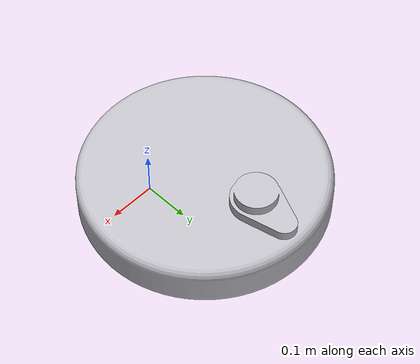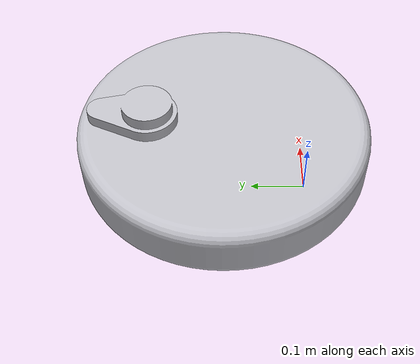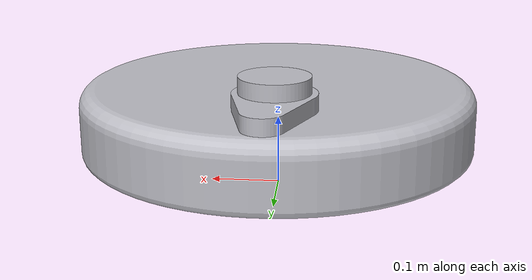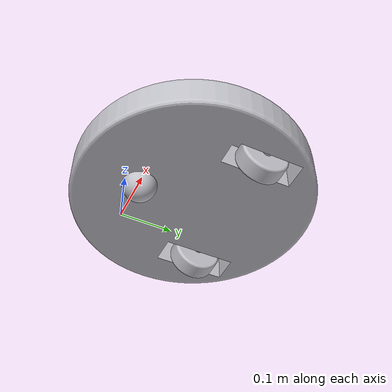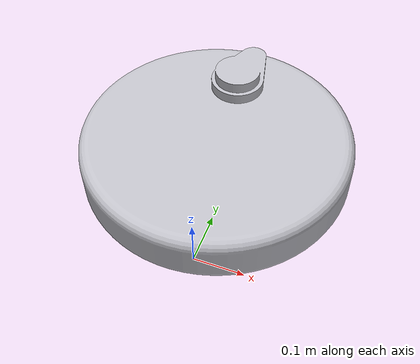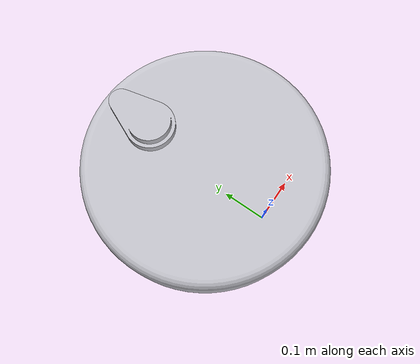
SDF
<sdf version='1.7'>
  <model name='BadBot'>
    <link name='base_link'>
      <inertial>
        <pose>-0.010539 0.150003 0.152056 0 -0 0</pose>
        <mass>29.6869</mass>
        <inertia>
          <ixx>0.0123822</ixx>
          <ixy>0.000223118</ixy>
          <ixz>0.000103646</ixz>
          <iyy>0.0129477</iyy>
          <iyz>-0.00190386</iyz>
          <izz>0.0220306</izz>
        </inertia>
      </inertial>
      <collision name='base_link_collision'>
        <pose>0 0 0 0 -0 0</pose>
        <geometry>
          <mesh>
            <scale>0.001 0.001 0.001</scale>
            <uri>file:///home/mayank/BadBot/BadBot_ros2_ws/install/BadBot_description/share/BadBot_description/meshes/base_link.stl</uri>
          </mesh>
        </geometry>
        <surface>
          <contact>
            <ode/>
          </contact>
          <friction>
            <ode>
              <mu>0.2</mu>
              <mu2>0.2</mu2>
            </ode>
          </friction>
        </surface>
      </collision>
      <collision name='base_link_fixed_joint_lump__left_shaft_1_collision_1'>
        <pose>0 0 0 0 -0 0</pose>
        <geometry>
          <mesh>
            <scale>0.001 0.001 0.001</scale>
            <uri>file:///home/mayank/BadBot/BadBot_ros2_ws/install/BadBot_description/share/BadBot_description/meshes/left_shaft_1.stl</uri>
          </mesh>
        </geometry>
        <surface>
          <contact>
            <ode/>
          </contact>
          <friction>
            <ode>
              <mu>0.2</mu>
              <mu2>0.2</mu2>
            </ode>
          </friction>
        </surface>
      </collision>
      <collision name='base_link_fixed_joint_lump__lidar_1_collision_2'>
        <pose>0 0 0 0 -0 0</pose>
        <geometry>
          <mesh>
            <scale>0.001 0.001 0.001</scale>
            <uri>file:///home/mayank/BadBot/BadBot_ros2_ws/install/BadBot_description/share/BadBot_description/meshes/lidar_1.stl</uri>
          </mesh>
        </geometry>
        <surface>
          <contact>
            <ode/>
          </contact>
          <friction>
            <ode>
              <mu>0.2</mu>
              <mu2>0.2</mu2>
            </ode>
          </friction>
        </surface>
      </collision>
      <collision name='base_link_fixed_joint_lump__right_shaft_1_collision_3'>
        <pose>0 0 0 0 -0 0</pose>
        <geometry>
          <mesh>
            <scale>0.001 0.001 0.001</scale>
            <uri>file:///home/mayank/BadBot/BadBot_ros2_ws/install/BadBot_description/share/BadBot_description/meshes/right_shaft_1.stl</uri>
          </mesh>
        </geometry>
        <surface>
          <contact>
            <ode/>
          </contact>
          <friction>
            <ode>
              <mu>0.2</mu>
              <mu2>0.2</mu2>
            </ode>
          </friction>
        </surface>
      </collision>
      <visual name='base_link_visual'>
        <pose>0 0 0 0 -0 0</pose>
        <geometry>
          <mesh>
            <scale>0.001 0.001 0.001</scale>
            <uri>file:///home/mayank/BadBot/BadBot_ros2_ws/install/BadBot_description/share/BadBot_description/meshes/base_link.stl</uri>
          </mesh>
        </geometry>
        <material>
          <script>
            <name>Gazebo/Silver</name>
            <uri>file://media/materials/scripts/gazebo.material</uri>
          </script>
        </material>
      </visual>
      <visual name='base_link_fixed_joint_lump__left_shaft_1_visual_1'>
        <pose>0 0 0 0 -0 0</pose>
        <geometry>
          <mesh>
            <scale>0.001 0.001 0.001</scale>
            <uri>file:///home/mayank/BadBot/BadBot_ros2_ws/install/BadBot_description/share/BadBot_description/meshes/left_shaft_1.stl</uri>
          </mesh>
        </geometry>
        <material>
          <script>
            <name>Gazebo/Silver</name>
            <uri>file://media/materials/scripts/gazebo.material</uri>
          </script>
        </material>
      </visual>
      <visual name='base_link_fixed_joint_lump__lidar_1_visual_2'>
        <pose>0 0 0 0 -0 0</pose>
        <geometry>
          <mesh>
            <scale>0.001 0.001 0.001</scale>
            <uri>file:///home/mayank/BadBot/BadBot_ros2_ws/install/BadBot_description/share/BadBot_description/meshes/lidar_1.stl</uri>
          </mesh>
        </geometry>
        <material>
          <script>
            <name>Gazebo/Silver</name>
            <uri>file://media/materials/scripts/gazebo.material</uri>
          </script>
        </material>
      </visual>
      <visual name='base_link_fixed_joint_lump__right_shaft_1_visual_3'>
        <pose>0 0 0 0 -0 0</pose>
        <geometry>
          <mesh>
            <scale>0.001 0.001 0.001</scale>
            <uri>file:///home/mayank/BadBot/BadBot_ros2_ws/install/BadBot_description/share/BadBot_description/meshes/right_shaft_1.stl</uri>
          </mesh>
        </geometry>
        <material>
          <script>
            <name>Gazebo/Silver</name>
            <uri>file://media/materials/scripts/gazebo.material</uri>
          </script>
        </material>
      </visual>
      <self_collide>1</self_collide>
      <gravity>1</gravity>
      <self_collide>1</self_collide>
      <self_collide>1</self_collide>
      <self_collide>1</self_collide>
    </link>
    <joint name='Rev7' type='revolute'>
      <pose relative_to='base_link'>-0.010481 0.035074 0.108665 0 -0 0</pose>
      <parent>base_link</parent>
      <child>caster_wheel_1</child>
      <axis>
        <xyz>0 0 -1</xyz>
        <limit>
          <lower>-1e+16</lower>
          <upper>1e+16</upper>
        </limit>
        <dynamics>
          <spring_reference>0</spring_reference>
          <spring_stiffness>0</spring_stiffness>
        </dynamics>
      </axis>
    </joint>
    <link name='caster_wheel_1'>
      <pose relative_to='Rev7'>0 0 0 0 -0 0</pose>
      <inertial>
        <pose>0 -0 -0 0 -0 0</pose>
        <mass>1.40084</mass>
        <inertia>
          <ixx>0.000686</ixx>
          <ixy>0</ixy>
          <ixz>0</ixz>
          <iyy>0.000686</iyy>
          <iyz>0</iyz>
          <izz>0.000686</izz>
        </inertia>
      </inertial>
      <collision name='caster_wheel_1_collision'>
        <pose>0.010481 -0.035074 -0.108665 0 -0 0</pose>
        <geometry>
          <mesh>
            <scale>0.001 0.001 0.001</scale>
            <uri>file:///home/mayank/BadBot/BadBot_ros2_ws/install/BadBot_description/share/BadBot_description/meshes/caster_wheel_1.stl</uri>
          </mesh>
        </geometry>
        <surface>
          <contact>
            <ode/>
          </contact>
          <friction>
            <ode>
              <mu>0.2</mu>
              <mu2>0.2</mu2>
            </ode>
          </friction>
        </surface>
      </collision>
      <visual name='caster_wheel_1_visual'>
        <pose>0.010481 -0.035074 -0.108665 0 -0 0</pose>
        <geometry>
          <mesh>
            <scale>0.001 0.001 0.001</scale>
            <uri>file:///home/mayank/BadBot/BadBot_ros2_ws/install/BadBot_description/share/BadBot_description/meshes/caster_wheel_1.stl</uri>
          </mesh>
        </geometry>
        <material>
          <script>
            <name>Gazebo/Silver</name>
            <uri>file://media/materials/scripts/gazebo.material</uri>
          </script>
        </material>
      </visual>
      <self_collide>1</self_collide>
    </link>
    <joint name='Rev10' type='revolute'>
      <pose relative_to='base_link'>-0.160481 0.226663 0.123665 0 -0 0</pose>
      <parent>base_link</parent>
      <child>left_wheel_1</child>
      <axis>
        <xyz>-1 0 0</xyz>
        <limit>
          <lower>-1e+16</lower>
          <upper>1e+16</upper>
        </limit>
        <dynamics>
          <spring_reference>0</spring_reference>
          <spring_stiffness>0</spring_stiffness>
        </dynamics>
      </axis>
    </joint>
    <link name='left_wheel_1'>
      <pose relative_to='Rev10'>0 0 0 0 -0 0</pose>
      <inertial>
        <pose>0 -0 -0 0 -0 0</pose>
        <mass>0.3854</mass>
        <inertia>
          <ixx>0.000496</ixx>
          <ixy>0</ixy>
          <ixz>0</ixz>
          <iyy>0.000299</iyy>
          <iyz>0</iyz>
          <izz>0.000299</izz>
        </inertia>
      </inertial>
      <collision name='left_wheel_1_collision'>
        <pose>0.160481 -0.226663 -0.123665 0 -0 0</pose>
        <geometry>
          <mesh>
            <scale>0.001 0.001 0.001</scale>
            <uri>file:///home/mayank/BadBot/BadBot_ros2_ws/install/BadBot_description/share/BadBot_description/meshes/left_wheel_1.stl</uri>
          </mesh>
        </geometry>
        <surface>
          <contact>
            <ode/>
          </contact>
          <friction>
            <ode>
              <mu>0.2</mu>
              <mu2>0.2</mu2>
            </ode>
          </friction>
        </surface>
      </collision>
      <visual name='left_wheel_1_visual'>
        <pose>0.160481 -0.226663 -0.123665 0 -0 0</pose>
        <geometry>
          <mesh>
            <scale>0.001 0.001 0.001</scale>
            <uri>file:///home/mayank/BadBot/BadBot_ros2_ws/install/BadBot_description/share/BadBot_description/meshes/left_wheel_1.stl</uri>
          </mesh>
        </geometry>
        <material>
          <script>
            <name>Gazebo/Silver</name>
            <uri>file://media/materials/scripts/gazebo.material</uri>
          </script>
        </material>
      </visual>
      <self_collide>1</self_collide>
    </link>
    <joint name='Rev8' type='revolute'>
      <pose relative_to='base_link'>0.139519 0.226663 0.123665 0 -0 0</pose>
      <parent>base_link</parent>
      <child>right_wheel_1</child>
      <axis>
        <xyz>-1 0 0</xyz>
        <limit>
          <lower>-1e+16</lower>
          <upper>1e+16</upper>
        </limit>
        <dynamics>
          <spring_reference>0</spring_reference>
          <spring_stiffness>0</spring_stiffness>
        </dynamics>
      </axis>
    </joint>
    <link name='right_wheel_1'>
      <pose relative_to='Rev8'>0 0 0 0 -0 0</pose>
      <inertial>
        <pose>0 -0 -0 0 -0 0</pose>
        <mass>0.3854</mass>
        <inertia>
          <ixx>0.000496</ixx>
          <ixy>0</ixy>
          <ixz>0</ixz>
          <iyy>0.000299</iyy>
          <iyz>0</iyz>
          <izz>0.000299</izz>
        </inertia>
      </inertial>
      <collision name='right_wheel_1_collision'>
        <pose>-0.139519 -0.226663 -0.123665 0 -0 0</pose>
        <geometry>
          <mesh>
            <scale>0.001 0.001 0.001</scale>
            <uri>file:///home/mayank/BadBot/BadBot_ros2_ws/install/BadBot_description/share/BadBot_description/meshes/right_wheel_1.stl</uri>
          </mesh>
        </geometry>
        <surface>
          <contact>
            <ode/>
          </contact>
          <friction>
            <ode>
              <mu>0.2</mu>
              <mu2>0.2</mu2>
            </ode>
          </friction>
        </surface>
      </collision>
      <visual name='right_wheel_1_visual'>
        <pose>-0.139519 -0.226663 -0.123665 0 -0 0</pose>
        <geometry>
          <mesh>
            <scale>0.001 0.001 0.001</scale>
            <uri>file:///home/mayank/BadBot/BadBot_ros2_ws/install/BadBot_description/share/BadBot_description/meshes/right_wheel_1.stl</uri>
          </mesh>
        </geometry>
        <material>
          <script>
            <name>Gazebo/Silver</name>
            <uri>file://media/materials/scripts/gazebo.material</uri>
          </script>
        </material>
      </visual>
      <self_collide>1</self_collide>
    </link>
    <static>0</static>
    <plugin name='control' filename='libgazebo_ros_control.so'/>
  </model>
</sdf>
